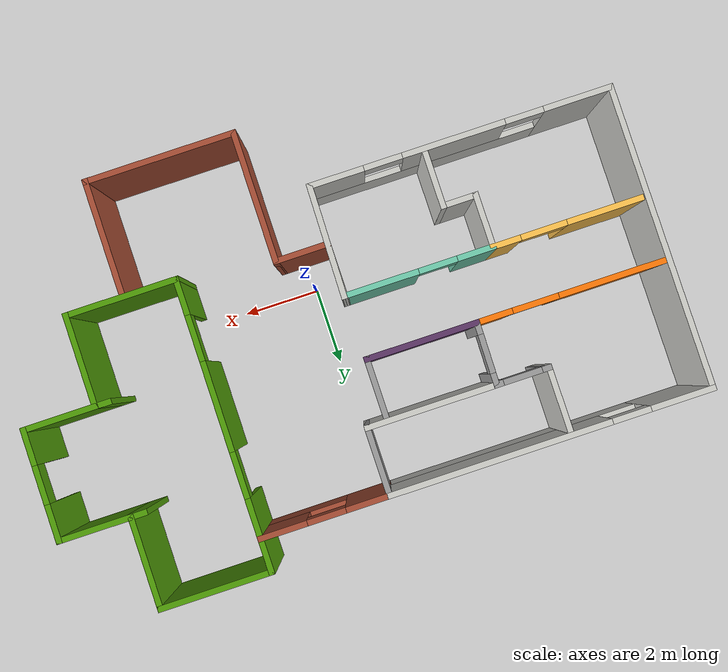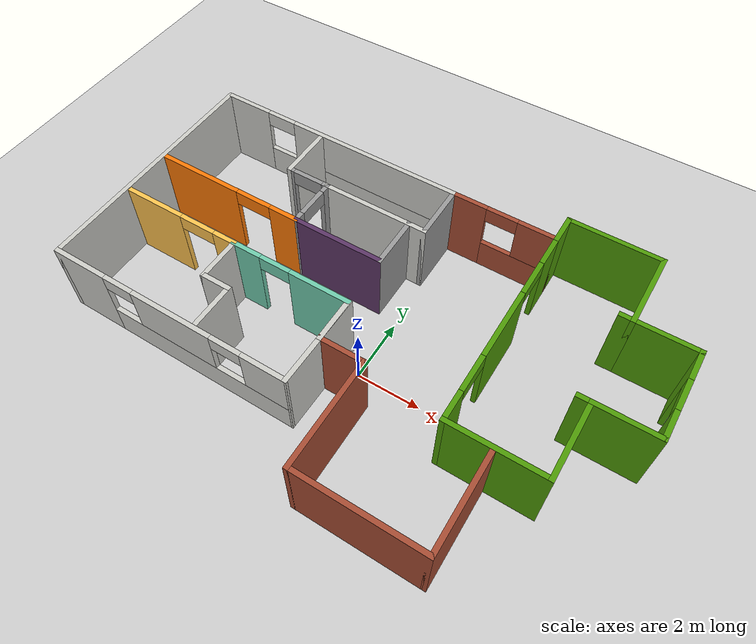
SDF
<sdf version='1.4'>
  <world name='default'>
    <!-- A global light source -->
    <include>
      <uri>model://sun</uri>
    </include>

    <!-- A ground plane -->
    <include>
      <uri>model://ground_plane</uri>
    </include>

    <physics type="ode">
      <real_time_update_rate>1000.0</real_time_update_rate>
      <max_step_size>0.001</max_step_size>
      <real_time_factor>1</real_time_factor>
      <ode>
        <solver>
          <type>quick</type>
          <iters>150</iters>
          <precon_iters>0</precon_iters>
          <sor>1.400000</sor>
          <use_dynamic_moi_rescaling>1</use_dynamic_moi_rescaling>
        </solver>
        <constraints>
          <cfm>0.00001</cfm>
          <erp>0.2</erp>
          <contact_max_correcting_vel>2000.000000</contact_max_correcting_vel>
          <contact_surface_layer>0.01000</contact_surface_layer>
        </constraints>
      </ode>
    </physics>

    <!-- A mobilebot symbol -->
    <include>
      <uri>model://mobilebot_stock</uri>
    </include>

    <scene>
      <ambient>0.4 0.4 0.4 1</ambient>
      <background>0.7 0.7 0.7 1</background>
      <shadows>true</shadows>
    </scene>

    <gui fullscreen='0'>
      <camera name='user_camera'>
        <pose>0.0 0.0 17.0 0 1.5708 0</pose>
        <view_controller>orbit</view_controller>
      </camera>
    </gui>
  </world>
</sdf>

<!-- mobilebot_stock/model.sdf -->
<sdf version='1.6'>
  <model name='stock'>
    <pose frame=''>-0.339478 1.13956 0 0 -0 0</pose>
    <link name='Wall_0'>
      <collision name='Wall_0_Collision'>
        <geometry>
          <box>
            <size>8 0.15 2.5</size>
          </box>
        </geometry>
        <pose frame=''>0 0 1.25 0 -0 0</pose>
      </collision>
      <visual name='Wall_0_Visual'>
        <pose frame=''>0 0 1.25 0 -0 0</pose>
        <geometry>
          <box>
            <size>8 0.15 2.5</size>
          </box>
        </geometry>
        <material>
          <script>
            <uri>file://media/materials/scripts/gazebo.material</uri>
            <name>Gazebo/CeilingTiled</name>
          </script>
          <ambient>1 1 1 1</ambient>
        </material>
        <meta>
          <layer>0</layer>
        </meta>
      </visual>
      <pose frame=''>-8.2 0.5 0 0 -0 -1.5708</pose>
    </link>
    <link name='Wall_1'>
      <pose frame=''>-4.275 -3.425 0 0 -0 0</pose>
      <visual name='Wall_1_Visual_0'>
        <pose frame=''>-3.08616 0 1.25 0 -0 0</pose>
        <geometry>
          <box>
            <size>1.82768 0.15 2.5</size>
          </box>
        </geometry>
        <material>
          <script>
            <uri>file://media/materials/scripts/gazebo.material</uri>
            <name>Gazebo/CeilingTiled</name>
          </script>
          <ambient>1 1 1 1</ambient>
        </material>
        <meta>
          <layer>0</layer>
        </meta>
      </visual>
      <collision name='Wall_1_Collision_0'>
        <geometry>
          <box>
            <size>1.82768 0.15 2.5</size>
          </box>
        </geometry>
        <pose frame=''>-3.08616 0 1.25 0 -0 0</pose>
      </collision>
      <visual name='Wall_1_Visual_1'>
        <pose frame=''>0.913839 0 0.5 0 -0 0</pose>
        <geometry>
          <box>
            <size>6.17232 0.15 1</size>
          </box>
        </geometry>
        <material>
          <script>
            <uri>file://media/materials/scripts/gazebo.material</uri>
            <name>Gazebo/CeilingTiled</name>
          </script>
          <ambient>1 1 1 1</ambient>
        </material>
        <meta>
          <layer>0</layer>
        </meta>
      </visual>
      <collision name='Wall_1_Collision_1'>
        <geometry>
          <box>
            <size>6.17232 0.15 1</size>
          </box>
        </geometry>
        <pose frame=''>0.913839 0 0.5 0 -0 0</pose>
      </collision>
      <visual name='Wall_1_Visual_2'>
        <pose frame=''>0.170983 0 1.75 0 -0 0</pose>
        <geometry>
          <box>
            <size>2.68661 0.15 1.5</size>
          </box>
        </geometry>
        <material>
          <script>
            <uri>file://media/materials/scripts/gazebo.material</uri>
            <name>Gazebo/CeilingTiled</name>
          </script>
          <ambient>1 1 1 1</ambient>
        </material>
        <meta>
          <layer>0</layer>
        </meta>
      </visual>
      <collision name='Wall_1_Collision_2'>
        <geometry>
          <box>
            <size>2.68661 0.15 1.5</size>
          </box>
        </geometry>
        <pose frame=''>0.170983 0 1.75 0 -0 0</pose>
      </collision>
      <visual name='Wall_1_Visual_3'>
        <pose frame=''>3.25714 0 1.75 0 -0 0</pose>
        <geometry>
          <box>
            <size>1.48571 0.15 1.5</size>
          </box>
        </geometry>
        <material>
          <script>
            <uri>file://media/materials/scripts/gazebo.material</uri>
            <name>Gazebo/CeilingTiled</name>
          </script>
          <ambient>1 1 1 1</ambient>
        </material>
        <meta>
          <layer>0</layer>
        </meta>
      </visual>
      <collision name='Wall_1_Collision_3'>
        <geometry>
          <box>
            <size>1.48571 0.15 1.5</size>
          </box>
        </geometry>
        <pose frame=''>3.25714 0 1.75 0 -0 0</pose>
      </collision>
      <visual name='Wall_1_Visual_4'>
        <pose frame=''>-1.67232 0 2.25 0 -0 0</pose>
        <geometry>
          <box>
            <size>1 0.15 0.5</size>
          </box>
        </geometry>
        <material>
          <script>
            <uri>file://media/materials/scripts/gazebo.material</uri>
            <name>Gazebo/CeilingTiled</name>
          </script>
          <ambient>1 1 1 1</ambient>
        </material>
        <meta>
          <layer>0</layer>
        </meta>
      </visual>
      <collision name='Wall_1_Collision_4'>
        <geometry>
          <box>
            <size>1 0.15 0.5</size>
          </box>
        </geometry>
        <pose frame=''>-1.67232 0 2.25 0 -0 0</pose>
      </collision>
      <visual name='Wall_1_Visual_5'>
        <pose frame=''>2.01429 0 2.25 0 -0 0</pose>
        <geometry>
          <box>
            <size>1 0.15 0.5</size>
          </box>
        </geometry>
        <material>
          <script>
            <uri>file://media/materials/scripts/gazebo.material</uri>
            <name>Gazebo/CeilingTiled</name>
          </script>
          <ambient>1 1 1 1</ambient>
        </material>
        <meta>
          <layer>0</layer>
        </meta>
      </visual>
      <collision name='Wall_1_Collision_5'>
        <geometry>
          <box>
            <size>1 0.15 0.5</size>
          </box>
        </geometry>
        <pose frame=''>2.01429 0 2.25 0 -0 0</pose>
      </collision>
    </link>
    <link name='Wall_11'>
      <pose frame=''>-4.025 4.425 0 0 -0 0</pose>
      <visual name='Wall_11_Visual_0'>
        <pose frame=''>-3.41033 0 1.25 0 -0 0</pose>
        <geometry>
          <box>
            <size>1.67933 0.15 2.5</size>
          </box>
        </geometry>
        <material>
          <script>
            <uri>file://media/materials/scripts/gazebo.material</uri>
            <name>Gazebo/CeilingTiled</name>
          </script>
          <ambient>1 1 1 1</ambient>
        </material>
        <meta>
          <layer>0</layer>
        </meta>
      </visual>
      <collision name='Wall_11_Collision_0'>
        <geometry>
          <box>
            <size>1.67933 0.15 2.5</size>
          </box>
        </geometry>
        <pose frame=''>-3.41033 0 1.25 0 -0 0</pose>
      </collision>
      <visual name='Wall_11_Visual_1'>
        <pose frame=''>0.839666 0 0.5 0 -0 0</pose>
        <geometry>
          <box>
            <size>6.82067 0.15 1</size>
          </box>
        </geometry>
        <material>
          <script>
            <uri>file://media/materials/scripts/gazebo.material</uri>
            <name>Gazebo/CeilingTiled</name>
          </script>
          <ambient>1 1 1 1</ambient>
        </material>
        <meta>
          <layer>0</layer>
        </meta>
      </visual>
      <collision name='Wall_11_Collision_1'>
        <geometry>
          <box>
            <size>6.82067 0.15 1</size>
          </box>
        </geometry>
        <pose frame=''>0.839666 0 0.5 0 -0 0</pose>
      </collision>
      <visual name='Wall_11_Visual_2'>
        <pose frame=''>1.33967 0 1.75 0 -0 0</pose>
        <geometry>
          <box>
            <size>5.82067 0.15 1.5</size>
          </box>
        </geometry>
        <material>
          <script>
            <uri>file://media/materials/scripts/gazebo.material</uri>
            <name>Gazebo/CeilingTiled</name>
          </script>
          <ambient>1 1 1 1</ambient>
        </material>
        <meta>
          <layer>0</layer>
        </meta>
      </visual>
      <collision name='Wall_11_Collision_2'>
        <geometry>
          <box>
            <size>5.82067 0.15 1.5</size>
          </box>
        </geometry>
        <pose frame=''>1.33967 0 1.75 0 -0 0</pose>
      </collision>
      <visual name='Wall_11_Visual_3'>
        <pose frame=''>-2.07067 0 2.25 0 -0 0</pose>
        <geometry>
          <box>
            <size>1 0.15 0.5</size>
          </box>
        </geometry>
        <material>
          <script>
            <uri>file://media/materials/scripts/gazebo.material</uri>
            <name>Gazebo/CeilingTiled</name>
          </script>
          <ambient>1 1 1 1</ambient>
        </material>
        <meta>
          <layer>0</layer>
        </meta>
      </visual>
      <collision name='Wall_11_Collision_3'>
        <geometry>
          <box>
            <size>1 0.15 0.5</size>
          </box>
        </geometry>
        <pose frame=''>-2.07067 0 2.25 0 -0 0</pose>
      </collision>
    </link>
    <link name='Wall_13'>
      <collision name='Wall_13_Collision'>
        <geometry>
          <box>
            <size>3 0.15 2.5</size>
          </box>
        </geometry>
        <pose frame=''>0 0 1.25 0 -0 0</pose>
      </collision>
      <visual name='Wall_13_Visual'>
        <pose frame=''>0 0 1.25 0 -0 0</pose>
        <geometry>
          <box>
            <size>3 0.15 2.5</size>
          </box>
        </geometry>
        <material>
          <script>
            <uri>file://media/materials/scripts/gazebo.material</uri>
            <name>Gazebo/Grey</name>
          </script>
          <ambient>0.360784 0.207843 0.4 1</ambient>
        </material>
        <meta>
          <layer>0</layer>
        </meta>
      </visual>
      <pose frame=''>-1.775 1.075 0 0 -0 3.14159</pose>
    </link>
    <link name='Wall_14'>
      <pose frame=''>-3.18921 1.875 0 0 -0 1.55732</pose>
      <visual name='Wall_14_Visual_0'>
        <pose frame=''>-0.686806 0 1.25 0 -0 0</pose>
        <geometry>
          <box>
            <size>0.376387 0.15 2.5</size>
          </box>
        </geometry>
        <material>
          <script>
            <uri>file://media/materials/scripts/gazebo.material</uri>
            <name>Gazebo/Grey</name>
          </script>
          <ambient>1 1 1 1</ambient>
        </material>
        <meta>
          <layer>0</layer>
        </meta>
      </visual>
      <collision name='Wall_14_Collision_0'>
        <geometry>
          <box>
            <size>0.376387 0.15 2.5</size>
          </box>
        </geometry>
        <pose frame=''>-0.686806 0 1.25 0 -0 0</pose>
      </collision>
      <visual name='Wall_14_Visual_1'>
        <pose frame=''>0.688194 0 1.25 0 -0 0</pose>
        <geometry>
          <box>
            <size>0.373613 0.15 2.5</size>
          </box>
        </geometry>
        <material>
          <script>
            <uri>file://media/materials/scripts/gazebo.material</uri>
            <name>Gazebo/Grey</name>
          </script>
          <ambient>1 1 1 1</ambient>
        </material>
        <meta>
          <layer>0</layer>
        </meta>
      </visual>
      <collision name='Wall_14_Collision_1'>
        <geometry>
          <box>
            <size>0.373613 0.15 2.5</size>
          </box>
        </geometry>
        <pose frame=''>0.688194 0 1.25 0 -0 0</pose>
      </collision>
      <visual name='Wall_14_Visual_2'>
        <pose frame=''>0.001387 0 2.25 0 -0 0</pose>
        <geometry>
          <box>
            <size>1 0.15 0.5</size>
          </box>
        </geometry>
        <material>
          <script>
            <uri>file://media/materials/scripts/gazebo.material</uri>
            <name>Gazebo/Grey</name>
          </script>
          <ambient>1 1 1 1</ambient>
        </material>
        <meta>
          <layer>0</layer>
        </meta>
      </visual>
      <collision name='Wall_14_Collision_2'>
        <geometry>
          <box>
            <size>1 0.15 0.5</size>
          </box>
        </geometry>
        <pose frame=''>0.001387 0 2.25 0 -0 0</pose>
      </collision>
    </link>
    <link name='Wall_16'>
      <collision name='Wall_16_Collision'>
        <geometry>
          <box>
            <size>3.5 0.15 2.5</size>
          </box>
        </geometry>
        <pose frame=''>0 0 1.25 0 -0 0</pose>
      </collision>
      <visual name='Wall_16_Visual'>
        <pose frame=''>0 0 1.25 0 -0 0</pose>
        <geometry>
          <box>
            <size>3.5 0.15 2.5</size>
          </box>
        </geometry>
        <material>
          <script>
            <uri>file://media/materials/scripts/gazebo.material</uri>
            <name>Gazebo/CeilingTiled</name>
          </script>
          <ambient>1 1 1 1</ambient>
        </material>
        <meta>
          <layer>0</layer>
        </meta>
      </visual>
      <pose frame=''>-1.50343 2.675 0 0 -0 0</pose>
    </link>
    <link name='Wall_18'>
      <pose frame=''>-3.86062 2.675 0 0 -0 3.14159</pose>
      <visual name='Wall_18_Visual_0'>
        <pose frame=''>-0.625189 0 1.25 0 -0 0</pose>
        <geometry>
          <box>
            <size>0.249622 0.15 2.5</size>
          </box>
        </geometry>
        <material>
          <script>
            <uri>file://media/materials/scripts/gazebo.material</uri>
            <name>Gazebo/Grey</name>
          </script>
          <ambient>0.333333 0.341176 0.32549 1</ambient>
        </material>
        <meta>
          <layer>0</layer>
        </meta>
      </visual>
      <collision name='Wall_18_Collision_0'>
        <geometry>
          <box>
            <size>0.249622 0.15 2.5</size>
          </box>
        </geometry>
        <pose frame=''>-0.625189 0 1.25 0 -0 0</pose>
      </collision>
      <visual name='Wall_18_Visual_1'>
        <pose frame=''>0.624811 0 1.25 0 -0 0</pose>
        <geometry>
          <box>
            <size>0.250378 0.15 2.5</size>
          </box>
        </geometry>
        <material>
          <script>
            <uri>file://media/materials/scripts/gazebo.material</uri>
            <name>Gazebo/Grey</name>
          </script>
          <ambient>0.333333 0.341176 0.32549 1</ambient>
        </material>
        <meta>
          <layer>0</layer>
        </meta>
      </visual>
      <collision name='Wall_18_Collision_1'>
        <geometry>
          <box>
            <size>0.250378 0.15 2.5</size>
          </box>
        </geometry>
        <pose frame=''>0.624811 0 1.25 0 -0 0</pose>
      </collision>
      <visual name='Wall_18_Visual_2'>
        <pose frame=''>-0.000378 0 2.25 0 -0 0</pose>
        <geometry>
          <box>
            <size>1 0.15 0.5</size>
          </box>
        </geometry>
        <material>
          <script>
            <uri>file://media/materials/scripts/gazebo.material</uri>
            <name>Gazebo/Grey</name>
          </script>
          <ambient>0.333333 0.341176 0.32549 1</ambient>
        </material>
        <meta>
          <layer>0</layer>
        </meta>
      </visual>
      <collision name='Wall_18_Collision_2'>
        <geometry>
          <box>
            <size>1 0.15 0.5</size>
          </box>
        </geometry>
        <pose frame=''>-0.000378 0 2.25 0 -0 0</pose>
      </collision>
    </link>
    <link name='Wall_2'>
      <collision name='Wall_2_Collision'>
        <geometry>
          <box>
            <size>3 0.15 2.5</size>
          </box>
        </geometry>
        <pose frame=''>0 0 1.25 0 -0 0</pose>
      </collision>
      <visual name='Wall_2_Visual'>
        <pose frame=''>0 0 1.25 0 -0 0</pose>
        <geometry>
          <box>
            <size>3 0.15 2.5</size>
          </box>
        </geometry>
        <material>
          <script>
            <uri>file://media/materials/scripts/gazebo.material</uri>
            <name>Gazebo/CeilingTiled</name>
          </script>
          <ambient>1 1 1 1</ambient>
        </material>
        <meta>
          <layer>0</layer>
        </meta>
      </visual>
      <pose frame=''>-0.326869 -2 0 0 -0 1.55457</pose>
    </link>
    <link name='Wall_23'>
      <pose frame=''>-5.625 1.075 0 0 -0 3.14159</pose>
      <visual name='Wall_23_Visual_0'>
        <pose frame=''>-1.99871 0 1.25 0 -0 0</pose>
        <geometry>
          <box>
            <size>1.00259 0.15 2.5</size>
          </box>
        </geometry>
        <material>
          <script>
            <uri>file://media/materials/scripts/gazebo.material</uri>
            <name>Gazebo/Grey</name>
          </script>
          <ambient>0.996078 0.47451 0.0196078 1</ambient>
        </material>
        <meta>
          <layer>0</layer>
        </meta>
      </visual>
      <collision name='Wall_23_Collision_0'>
        <geometry>
          <box>
            <size>1.00259 0.15 2.5</size>
          </box>
        </geometry>
        <pose frame=''>-1.99871 0 1.25 0 -0 0</pose>
      </collision>
      <visual name='Wall_23_Visual_1'>
        <pose frame=''>1.10129 0 1.25 0 -0 0</pose>
        <geometry>
          <box>
            <size>2.79741 0.15 2.5</size>
          </box>
        </geometry>
        <material>
          <script>
            <uri>file://media/materials/scripts/gazebo.material</uri>
            <name>Gazebo/Grey</name>
          </script>
          <ambient>0.996078 0.47451 0.0196078 1</ambient>
        </material>
        <meta>
          <layer>0</layer>
        </meta>
      </visual>
      <collision name='Wall_23_Collision_1'>
        <geometry>
          <box>
            <size>2.79741 0.15 2.5</size>
          </box>
        </geometry>
        <pose frame=''>1.10129 0 1.25 0 -0 0</pose>
      </collision>
      <visual name='Wall_23_Visual_2'>
        <pose frame=''>-0.897414 0 2.25 0 -0 0</pose>
        <geometry>
          <box>
            <size>1.2 0.15 0.5</size>
          </box>
        </geometry>
        <material>
          <script>
            <uri>file://media/materials/scripts/gazebo.material</uri>
            <name>Gazebo/Grey</name>
          </script>
          <ambient>0.996078 0.47451 0.0196078 1</ambient>
        </material>
        <meta>
          <layer>0</layer>
        </meta>
      </visual>
      <collision name='Wall_23_Collision_2'>
        <geometry>
          <box>
            <size>1.2 0.15 0.5</size>
          </box>
        </geometry>
        <pose frame=''>-0.897414 0 2.25 0 -0 0</pose>
      </collision>
    </link>
    <link name='Wall_25'>
      <pose frame=''>1.825 4.425 0 0 -0 0</pose>
      <visual name='Wall_25_Visual_0'>
        <pose frame=''>-1.13874 0 1.25 0 -0 0</pose>
        <geometry>
          <box>
            <size>1.22252 0.15 2.5</size>
          </box>
        </geometry>
        <material>
          <script>
            <uri>file://media/materials/scripts/gazebo.material</uri>
            <name>Gazebo/Bricks</name>
          </script>
          <ambient>1 1 1 1</ambient>
        </material>
        <meta>
          <layer>0</layer>
        </meta>
      </visual>
      <collision name='Wall_25_Collision_0'>
        <geometry>
          <box>
            <size>1.22252 0.15 2.5</size>
          </box>
        </geometry>
        <pose frame=''>-1.13874 0 1.25 0 -0 0</pose>
      </collision>
      <visual name='Wall_25_Visual_1'>
        <pose frame=''>0.611261 0 0.5 0 -0 0</pose>
        <geometry>
          <box>
            <size>2.27748 0.15 1</size>
          </box>
        </geometry>
        <material>
          <script>
            <uri>file://media/materials/scripts/gazebo.material</uri>
            <name>Gazebo/Bricks</name>
          </script>
          <ambient>1 1 1 1</ambient>
        </material>
        <meta>
          <layer>0</layer>
        </meta>
      </visual>
      <collision name='Wall_25_Collision_1'>
        <geometry>
          <box>
            <size>2.27748 0.15 1</size>
          </box>
        </geometry>
        <pose frame=''>0.611261 0 0.5 0 -0 0</pose>
      </collision>
      <visual name='Wall_25_Visual_2'>
        <pose frame=''>1.11126 0 1.75 0 -0 0</pose>
        <geometry>
          <box>
            <size>1.27748 0.15 1.5</size>
          </box>
        </geometry>
        <material>
          <script>
            <uri>file://media/materials/scripts/gazebo.material</uri>
            <name>Gazebo/Bricks</name>
          </script>
          <ambient>1 1 1 1</ambient>
        </material>
        <meta>
          <layer>0</layer>
        </meta>
      </visual>
      <collision name='Wall_25_Collision_2'>
        <geometry>
          <box>
            <size>1.27748 0.15 1.5</size>
          </box>
        </geometry>
        <pose frame=''>1.11126 0 1.75 0 -0 0</pose>
      </collision>
      <visual name='Wall_25_Visual_3'>
        <pose frame=''>-0.027478 0 2.25 0 -0 0</pose>
        <geometry>
          <box>
            <size>1 0.15 0.5</size>
          </box>
        </geometry>
        <material>
          <script>
            <uri>file://media/materials/scripts/gazebo.material</uri>
            <name>Gazebo/Bricks</name>
          </script>
          <ambient>1 1 1 1</ambient>
        </material>
        <meta>
          <layer>0</layer>
        </meta>
      </visual>
      <collision name='Wall_25_Collision_3'>
        <geometry>
          <box>
            <size>1 0.15 0.5</size>
          </box>
        </geometry>
        <pose frame=''>-0.027478 0 2.25 0 -0 0</pose>
      </collision>
    </link>
    <link name='Wall_26'>
      <collision name='Wall_26_Collision'>
        <geometry>
          <box>
            <size>1 0.15 2.5</size>
          </box>
        </geometry>
        <pose frame=''>0 0 1.25 0 -0 0</pose>
      </collision>
      <visual name='Wall_26_Visual'>
        <pose frame=''>0 0 1.25 0 -0 0</pose>
        <geometry>
          <box>
            <size>1 0.15 2.5</size>
          </box>
        </geometry>
        <material>
          <script>
            <uri>file://media/materials/scripts/gazebo.material</uri>
            <name>Gazebo/Grey</name>
          </script>
          <ambient>0.305882 0.603922 0.0235294 1</ambient>
        </material>
        <meta>
          <layer>0</layer>
        </meta>
      </visual>
      <pose frame=''>3.5 4.85 0 0 -0 1.5708</pose>
    </link>
    <link name='Wall_27'>
      <collision name='Wall_27_Collision'>
        <geometry>
          <box>
            <size>3 0.15 2.5</size>
          </box>
        </geometry>
        <pose frame=''>0 0 1.25 0 -0 0</pose>
      </collision>
      <visual name='Wall_27_Visual'>
        <pose frame=''>0 0 1.25 0 -0 0</pose>
        <geometry>
          <box>
            <size>3 0.15 2.5</size>
          </box>
        </geometry>
        <material>
          <script>
            <uri>file://media/materials/scripts/gazebo.material</uri>
            <name>Gazebo/Grey</name>
          </script>
          <ambient>0.305882 0.603922 0.0235294 1</ambient>
        </material>
        <meta>
          <layer>0</layer>
        </meta>
      </visual>
      <pose frame=''>4.925 5.275 0 0 -0 0</pose>
    </link>
    <link name='Wall_28'>
      <collision name='Wall_28_Collision'>
        <geometry>
          <box>
            <size>2.5 0.15 2.5</size>
          </box>
        </geometry>
        <pose frame=''>0 0 1.25 0 -0 0</pose>
      </collision>
      <visual name='Wall_28_Visual'>
        <pose frame=''>0 0 1.25 0 -0 0</pose>
        <geometry>
          <box>
            <size>2.5 0.15 2.5</size>
          </box>
        </geometry>
        <material>
          <script>
            <uri>file://media/materials/scripts/gazebo.material</uri>
            <name>Gazebo/Grey</name>
          </script>
          <ambient>0.305882 0.603922 0.0235294 1</ambient>
        </material>
        <meta>
          <layer>0</layer>
        </meta>
      </visual>
      <pose frame=''>6.35 4.1 0 0 -0 -1.5708</pose>
    </link>
    <link name='Wall_29'>
      <collision name='Wall_29_Collision'>
        <geometry>
          <box>
            <size>2 0.15 2.5</size>
          </box>
        </geometry>
        <pose frame=''>0 0 1.25 0 -0 0</pose>
      </collision>
      <visual name='Wall_29_Visual'>
        <pose frame=''>0 0 1.25 0 -0 0</pose>
        <geometry>
          <box>
            <size>2 0.15 2.5</size>
          </box>
        </geometry>
        <material>
          <script>
            <uri>file://media/materials/scripts/gazebo.material</uri>
            <name>Gazebo/Grey</name>
          </script>
          <ambient>0.305882 0.603922 0.0235294 1</ambient>
        </material>
        <meta>
          <layer>0</layer>
        </meta>
      </visual>
      <pose frame=''>7.275 2.925 0 0 -0 0</pose>
    </link>
    <link name='Wall_3'>
      <pose frame=''>-2.25187 -0.575 0 0 -0 3.14159</pose>
      <visual name='Wall_3_Visual_0'>
        <pose frame=''>-1.00337 0 1.25 0 -0 0</pose>
        <geometry>
          <box>
            <size>1.99326 0.15 2.5</size>
          </box>
        </geometry>
        <material>
          <script>
            <uri>file://media/materials/scripts/gazebo.material</uri>
            <name>Gazebo/Grey</name>
          </script>
          <ambient>0.435294 0.796078 0.67451 1</ambient>
        </material>
        <meta>
          <layer>0</layer>
        </meta>
      </visual>
      <collision name='Wall_3_Collision_0'>
        <geometry>
          <box>
            <size>1.99326 0.15 2.5</size>
          </box>
        </geometry>
        <pose frame=''>-1.00337 0 1.25 0 -0 0</pose>
      </collision>
      <visual name='Wall_3_Visual_1'>
        <pose frame=''>1.49663 0 1.25 0 -0 0</pose>
        <geometry>
          <box>
            <size>1.00674 0.15 2.5</size>
          </box>
        </geometry>
        <material>
          <script>
            <uri>file://media/materials/scripts/gazebo.material</uri>
            <name>Gazebo/Grey</name>
          </script>
          <ambient>0.435294 0.796078 0.67451 1</ambient>
        </material>
        <meta>
          <layer>0</layer>
        </meta>
      </visual>
      <collision name='Wall_3_Collision_1'>
        <geometry>
          <box>
            <size>1.00674 0.15 2.5</size>
          </box>
        </geometry>
        <pose frame=''>1.49663 0 1.25 0 -0 0</pose>
      </collision>
      <visual name='Wall_3_Visual_2'>
        <pose frame=''>0.493258 0 2.25 0 -0 0</pose>
        <geometry>
          <box>
            <size>1 0.15 0.5</size>
          </box>
        </geometry>
        <material>
          <script>
            <uri>file://media/materials/scripts/gazebo.material</uri>
            <name>Gazebo/Grey</name>
          </script>
          <ambient>0.435294 0.796078 0.67451 1</ambient>
        </material>
        <meta>
          <layer>0</layer>
        </meta>
      </visual>
      <collision name='Wall_3_Collision_2'>
        <geometry>
          <box>
            <size>1 0.15 0.5</size>
          </box>
        </geometry>
        <pose frame=''>0.493258 0 2.25 0 -0 0</pose>
      </collision>
    </link>
    <link name='Wall_30'>
      <pose frame=''>8.2 1.5 0 0 -0 -1.5708</pose>
      <visual name='Wall_30_Visual_0'>
        <pose frame=''>-0.994978 0 1.25 0 -0 0</pose>
        <geometry>
          <box>
            <size>1.01005 0.15 2.5</size>
          </box>
        </geometry>
        <material>
          <script>
            <uri>file://media/materials/scripts/gazebo.material</uri>
            <name>Gazebo/Grey</name>
          </script>
          <ambient>0.305882 0.603922 0.0235294 1</ambient>
        </material>
        <meta>
          <layer>0</layer>
        </meta>
      </visual>
      <collision name='Wall_30_Collision_0'>
        <geometry>
          <box>
            <size>1.01005 0.15 2.5</size>
          </box>
        </geometry>
        <pose frame=''>-0.994978 0 1.25 0 -0 0</pose>
      </collision>
      <visual name='Wall_30_Visual_1'>
        <pose frame=''>1.00502 0 1.25 0 -0 0</pose>
        <geometry>
          <box>
            <size>0.989955 0.15 2.5</size>
          </box>
        </geometry>
        <material>
          <script>
            <uri>file://media/materials/scripts/gazebo.material</uri>
            <name>Gazebo/Grey</name>
          </script>
          <ambient>0.305882 0.603922 0.0235294 1</ambient>
        </material>
        <meta>
          <layer>0</layer>
        </meta>
      </visual>
      <collision name='Wall_30_Collision_1'>
        <geometry>
          <box>
            <size>0.989955 0.15 2.5</size>
          </box>
        </geometry>
        <pose frame=''>1.00502 0 1.25 0 -0 0</pose>
      </collision>
      <visual name='Wall_30_Visual_2'>
        <pose frame=''>0.010045 0 2.25 0 -0 0</pose>
        <geometry>
          <box>
            <size>1 0.15 0.5</size>
          </box>
        </geometry>
        <material>
          <script>
            <uri>file://media/materials/scripts/gazebo.material</uri>
            <name>Gazebo/Grey</name>
          </script>
          <ambient>0.305882 0.603922 0.0235294 1</ambient>
        </material>
        <meta>
          <layer>0</layer>
        </meta>
      </visual>
      <collision name='Wall_30_Collision_2'>
        <geometry>
          <box>
            <size>1 0.15 0.5</size>
          </box>
        </geometry>
        <pose frame=''>0.010045 0 2.25 0 -0 0</pose>
      </collision>
    </link>
    <link name='Wall_31'>
      <collision name='Wall_31_Collision'>
        <geometry>
          <box>
            <size>2 0.15 2.5</size>
          </box>
        </geometry>
        <pose frame=''>0 0 1.25 0 -0 0</pose>
      </collision>
      <visual name='Wall_31_Visual'>
        <pose frame=''>0 0 1.25 0 -0 0</pose>
        <geometry>
          <box>
            <size>2 0.15 2.5</size>
          </box>
        </geometry>
        <material>
          <script>
            <uri>file://media/materials/scripts/gazebo.material</uri>
            <name>Gazebo/Grey</name>
          </script>
          <ambient>0.305882 0.603922 0.0235294 1</ambient>
        </material>
        <meta>
          <layer>0</layer>
        </meta>
      </visual>
      <pose frame=''>7.275 0.075 0 0 -0 3.14159</pose>
    </link>
    <link name='Wall_32'>
      <collision name='Wall_32_Collision'>
        <geometry>
          <box>
            <size>2.5 0.15 2.5</size>
          </box>
        </geometry>
        <pose frame=''>0 0 1.25 0 -0 0</pose>
      </collision>
      <visual name='Wall_32_Visual'>
        <pose frame=''>0 0 1.25 0 -0 0</pose>
        <geometry>
          <box>
            <size>2.5 0.15 2.5</size>
          </box>
        </geometry>
        <material>
          <script>
            <uri>file://media/materials/scripts/gazebo.material</uri>
            <name>Gazebo/Grey</name>
          </script>
          <ambient>0.305882 0.603922 0.0235294 1</ambient>
        </material>
        <meta>
          <layer>0</layer>
        </meta>
      </visual>
      <pose frame=''>6.35 -1.1 0 0 -0 -1.5708</pose>
    </link>
    <link name='Wall_33'>
      <collision name='Wall_33_Collision'>
        <geometry>
          <box>
            <size>3 0.15 2.5</size>
          </box>
        </geometry>
        <pose frame=''>0 0 1.25 0 -0 0</pose>
      </collision>
      <visual name='Wall_33_Visual'>
        <pose frame=''>0 0 1.25 0 -0 0</pose>
        <geometry>
          <box>
            <size>3 0.15 2.5</size>
          </box>
        </geometry>
        <material>
          <script>
            <uri>file://media/materials/scripts/gazebo.material</uri>
            <name>Gazebo/Grey</name>
          </script>
          <ambient>0.305882 0.603922 0.0235294 1</ambient>
        </material>
        <meta>
          <layer>0</layer>
        </meta>
      </visual>
      <pose frame=''>4.925 -2.275 0 0 -0 3.14159</pose>
    </link>
    <link name='Wall_34'>
      <pose frame=''>3.5 1.025 0 0 -0 1.5708</pose>
      <visual name='Wall_34_Visual_0'>
        <pose frame=''>-2.87295 0 1.25 0 -0 0</pose>
        <geometry>
          <box>
            <size>1.00411 0.15 2.5</size>
          </box>
        </geometry>
        <material>
          <script>
            <uri>file://media/materials/scripts/gazebo.material</uri>
            <name>Gazebo/Grey</name>
          </script>
          <ambient>0.305882 0.603922 0.0235294 1</ambient>
        </material>
        <meta>
          <layer>0</layer>
        </meta>
      </visual>
      <collision name='Wall_34_Collision_0'>
        <geometry>
          <box>
            <size>1.00411 0.15 2.5</size>
          </box>
        </geometry>
        <pose frame=''>-2.87295 0 1.25 0 -0 0</pose>
      </collision>
      <visual name='Wall_34_Visual_1'>
        <pose frame=''>-0.000333 0 1.25 0 -0 0</pose>
        <geometry>
          <box>
            <size>2.34112 0.15 2.5</size>
          </box>
        </geometry>
        <material>
          <script>
            <uri>file://media/materials/scripts/gazebo.material</uri>
            <name>Gazebo/Grey</name>
          </script>
          <ambient>0.305882 0.603922 0.0235294 1</ambient>
        </material>
        <meta>
          <layer>0</layer>
        </meta>
      </visual>
      <collision name='Wall_34_Collision_1'>
        <geometry>
          <box>
            <size>2.34112 0.15 2.5</size>
          </box>
        </geometry>
        <pose frame=''>-0.000333 0 1.25 0 -0 0</pose>
      </collision>
      <visual name='Wall_34_Visual_2'>
        <pose frame=''>2.87261 0 1.25 0 -0 0</pose>
        <geometry>
          <box>
            <size>1.00477 0.15 2.5</size>
          </box>
        </geometry>
        <material>
          <script>
            <uri>file://media/materials/scripts/gazebo.material</uri>
            <name>Gazebo/Grey</name>
          </script>
          <ambient>0.305882 0.603922 0.0235294 1</ambient>
        </material>
        <meta>
          <layer>0</layer>
        </meta>
      </visual>
      <collision name='Wall_34_Collision_2'>
        <geometry>
          <box>
            <size>1.00477 0.15 2.5</size>
          </box>
        </geometry>
        <pose frame=''>2.87261 0 1.25 0 -0 0</pose>
      </collision>
      <visual name='Wall_34_Visual_3'>
        <pose frame=''>-1.77089 0 2.25 0 -0 0</pose>
        <geometry>
          <box>
            <size>1.2 0.15 0.5</size>
          </box>
        </geometry>
        <material>
          <script>
            <uri>file://media/materials/scripts/gazebo.material</uri>
            <name>Gazebo/Grey</name>
          </script>
          <ambient>0.305882 0.603922 0.0235294 1</ambient>
        </material>
        <meta>
          <layer>0</layer>
        </meta>
      </visual>
      <collision name='Wall_34_Collision_3'>
        <geometry>
          <box>
            <size>1.2 0.15 0.5</size>
          </box>
        </geometry>
        <pose frame=''>-1.77089 0 2.25 0 -0 0</pose>
      </collision>
      <visual name='Wall_34_Visual_4'>
        <pose frame=''>1.77023 0 2.25 0 -0 0</pose>
        <geometry>
          <box>
            <size>1.2 0.15 0.5</size>
          </box>
        </geometry>
        <material>
          <script>
            <uri>file://media/materials/scripts/gazebo.material</uri>
            <name>Gazebo/Grey</name>
          </script>
          <ambient>0.305882 0.603922 0.0235294 1</ambient>
        </material>
        <meta>
          <layer>0</layer>
        </meta>
      </visual>
      <collision name='Wall_34_Collision_4'>
        <geometry>
          <box>
            <size>1.2 0.15 0.5</size>
          </box>
        </geometry>
        <pose frame=''>1.77023 0 2.25 0 -0 0</pose>
      </collision>
    </link>
    <link name='Wall_36'>
      <collision name='Wall_36_Collision'>
        <geometry>
          <box>
            <size>1.5 0.15 2.5</size>
          </box>
        </geometry>
        <pose frame=''>0 0 1.25 0 -0 0</pose>
      </collision>
      <visual name='Wall_36_Visual'>
        <pose frame=''>0 0 1.25 0 -0 0</pose>
        <geometry>
          <box>
            <size>1.5 0.15 2.5</size>
          </box>
        </geometry>
        <material>
          <script>
            <uri>file://media/materials/scripts/gazebo.material</uri>
            <name>Gazebo/CeilingTiled</name>
          </script>
          <ambient>1 1 1 1</ambient>
        </material>
        <meta>
          <layer>0</layer>
        </meta>
      </visual>
      <pose frame=''>-0.326869 -1.25 0 0 -0 -1.5708</pose>
    </link>
    <link name='Wall_37'>
      <collision name='Wall_37_Collision'>
        <geometry>
          <box>
            <size>1.5 0.15 2.5</size>
          </box>
        </geometry>
        <pose frame=''>0 0 1.25 0 -0 0</pose>
      </collision>
      <visual name='Wall_37_Visual'>
        <pose frame=''>0 0 1.25 0 -0 0</pose>
        <geometry>
          <box>
            <size>1.5 0.15 2.5</size>
          </box>
        </geometry>
        <material>
          <script>
            <uri>file://media/materials/scripts/gazebo.material</uri>
            <name>Gazebo/Bricks</name>
          </script>
          <ambient>1 1 1 1</ambient>
        </material>
        <meta>
          <layer>0</layer>
        </meta>
      </visual>
      <pose frame=''>0.348131 -1.925 0 0 -0 0</pose>
    </link>
    <link name='Wall_38'>
      <collision name='Wall_38_Collision'>
        <geometry>
          <box>
            <size>3.5 0.15 2.5</size>
          </box>
        </geometry>
        <pose frame=''>0 0 1.25 0 -0 0</pose>
      </collision>
      <visual name='Wall_38_Visual'>
        <pose frame=''>0 0 1.25 0 -0 0</pose>
        <geometry>
          <box>
            <size>3.5 0.15 2.5</size>
          </box>
        </geometry>
        <material>
          <script>
            <uri>file://media/materials/scripts/gazebo.material</uri>
            <name>Gazebo/Bricks</name>
          </script>
          <ambient>1 1 1 1</ambient>
        </material>
        <meta>
          <layer>0</layer>
        </meta>
      </visual>
      <pose frame=''>1.02313 -3.6 0 0 -0 -1.5708</pose>
    </link>
    <link name='Wall_39'>
      <collision name='Wall_39_Collision'>
        <geometry>
          <box>
            <size>4 0.15 2.5</size>
          </box>
        </geometry>
        <pose frame=''>0 0 1.25 0 -0 0</pose>
      </collision>
      <visual name='Wall_39_Visual'>
        <pose frame=''>0 0 1.25 0 -0 0</pose>
        <geometry>
          <box>
            <size>4 0.15 2.5</size>
          </box>
        </geometry>
        <material>
          <script>
            <uri>file://media/materials/scripts/gazebo.material</uri>
            <name>Gazebo/Bricks</name>
          </script>
          <ambient>1 1 1 1</ambient>
        </material>
        <meta>
          <layer>0</layer>
        </meta>
      </visual>
      <pose frame=''>2.94813 -5.275 0 0 -0 0</pose>
    </link>
    <link name='Wall_40'>
      <collision name='Wall_40_Collision'>
        <geometry>
          <box>
            <size>3 0.15 2.5</size>
          </box>
        </geometry>
        <pose frame=''>0 0 1.25 0 -0 0</pose>
      </collision>
      <visual name='Wall_40_Visual'>
        <pose frame=''>0 0 1.25 0 -0 0</pose>
        <geometry>
          <box>
            <size>3 0.15 2.5</size>
          </box>
        </geometry>
        <material>
          <script>
            <uri>file://media/materials/scripts/gazebo.material</uri>
            <name>Gazebo/Bricks</name>
          </script>
          <ambient>1 1 1 1</ambient>
        </material>
        <meta>
          <layer>0</layer>
        </meta>
      </visual>
      <pose frame=''>4.87313 -3.85 0 0 -0 1.5708</pose>
    </link>
    <link name='Wall_42'>
      <collision name='Wall_42_Collision'>
        <geometry>
          <box>
            <size>1.75 0.15 2.5</size>
          </box>
        </geometry>
        <pose frame=''>0 0 1.25 0 -0 0</pose>
      </collision>
      <visual name='Wall_42_Visual'>
        <pose frame=''>0 0 1.25 0 -0 0</pose>
        <geometry>
          <box>
            <size>1.75 0.15 2.5</size>
          </box>
        </geometry>
        <material>
          <script>
            <uri>file://media/materials/scripts/gazebo.material</uri>
            <name>Gazebo/CeilingTiled</name>
          </script>
          <ambient>1 1 1 1</ambient>
        </material>
        <meta>
          <layer>0</layer>
        </meta>
      </visual>
      <pose frame=''>-4.53562 3.475 0 0 -0 1.5708</pose>
    </link>
    <link name='Wall_44'>
      <collision name='Wall_44_Collision'>
        <geometry>
          <box>
            <size>0.5 0.15 2.5</size>
          </box>
        </geometry>
        <pose frame=''>0 0 1.25 0 -0 0</pose>
      </collision>
      <visual name='Wall_44_Visual'>
        <pose frame=''>0 0 1.25 0 -0 0</pose>
        <geometry>
          <box>
            <size>0.5 0.15 2.5</size>
          </box>
        </geometry>
        <material>
          <script>
            <uri>file://media/materials/scripts/gazebo.material</uri>
            <name>Gazebo/Grey</name>
          </script>
          <ambient>0.305882 0.603922 0.0235294 1</ambient>
        </material>
        <meta>
          <layer>0</layer>
        </meta>
      </visual>
      <pose frame=''>6.175 2.925 0 0 -0 3.14159</pose>
    </link>
    <link name='Wall_46'>
      <collision name='Wall_46_Collision'>
        <geometry>
          <box>
            <size>0.5 0.15 2.5</size>
          </box>
        </geometry>
        <pose frame=''>0 0 1.25 0 -0 0</pose>
      </collision>
      <visual name='Wall_46_Visual'>
        <pose frame=''>0 0 1.25 0 -0 0</pose>
        <geometry>
          <box>
            <size>0.5 0.15 2.5</size>
          </box>
        </geometry>
        <material>
          <script>
            <uri>file://media/materials/scripts/gazebo.material</uri>
            <name>Gazebo/Grey</name>
          </script>
          <ambient>0.305882 0.603922 0.0235294 1</ambient>
        </material>
        <meta>
          <layer>0</layer>
        </meta>
      </visual>
      <pose frame=''>6.175 0.075 0 0 -0 3.14159</pose>
    </link>
    <link name='Wall_49'>
      <collision name='Wall_49_Collision'>
        <geometry>
          <box>
            <size>1.75 0.15 2.5</size>
          </box>
        </geometry>
        <pose frame=''>0 0 1.25 0 -0 0</pose>
      </collision>
      <visual name='Wall_49_Visual'>
        <pose frame=''>0 0 1.25 0 -0 0</pose>
        <geometry>
          <box>
            <size>1.75 0.15 2.5</size>
          </box>
        </geometry>
        <material>
          <script>
            <uri>file://media/materials/scripts/gazebo.material</uri>
            <name>Gazebo/Grey</name>
          </script>
          <ambient>1 1 1 1</ambient>
        </material>
        <meta>
          <layer>0</layer>
        </meta>
      </visual>
      <pose frame=''>0.171572 3.475 0 0 -0 1.5708</pose>
    </link>
    <link name='Wall_5'>
      <collision name='Wall_5_Collision'>
        <geometry>
          <box>
            <size>1.5 0.15 2.5</size>
          </box>
        </geometry>
        <pose frame=''>0 0 1.25 0 -0 0</pose>
      </collision>
      <visual name='Wall_5_Visual'>
        <pose frame=''>0 0 1.25 0 -0 0</pose>
        <geometry>
          <box>
            <size>1.5 0.15 2.5</size>
          </box>
        </geometry>
        <material>
          <script>
            <uri>file://media/materials/scripts/gazebo.material</uri>
            <name>Gazebo/CeilingTiled</name>
          </script>
          <ambient>1 1 1 1</ambient>
        </material>
        <meta>
          <layer>0</layer>
        </meta>
      </visual>
      <pose frame=''>-4.17687 -1.25 0 0 -0 -1.5708</pose>
    </link>
    <link name='Wall_51'>
      <collision name='Wall_51_Collision'>
        <geometry>
          <box>
            <size>1.75 0.15 2.5</size>
          </box>
        </geometry>
        <pose frame=''>0 0 1.25 0 -0 0</pose>
      </collision>
      <visual name='Wall_51_Visual'>
        <pose frame=''>0 0 1.25 0 -0 0</pose>
        <geometry>
          <box>
            <size>1.75 0.15 2.5</size>
          </box>
        </geometry>
        <material>
          <script>
            <uri>file://media/materials/scripts/gazebo.material</uri>
            <name>Gazebo/Grey</name>
          </script>
          <ambient>1 1 1 1</ambient>
        </material>
        <meta>
          <layer>0</layer>
        </meta>
      </visual>
      <pose frame=''>-0.349999 1.875 0 0 -0 1.5708</pose>
    </link>
    <link name='Wall_6'>
      <collision name='Wall_6_Collision'>
        <geometry>
          <box>
            <size>1 0.15 2.5</size>
          </box>
        </geometry>
        <pose frame=''>0 0 1.25 0 -0 0</pose>
      </collision>
      <visual name='Wall_6_Visual'>
        <pose frame=''>0 0 1.25 0 -0 0</pose>
        <geometry>
          <box>
            <size>1 0.15 2.5</size>
          </box>
        </geometry>
        <material>
          <script>
            <uri>file://media/materials/scripts/gazebo.material</uri>
            <name>Gazebo/CeilingTiled</name>
          </script>
          <ambient>1 1 1 1</ambient>
        </material>
        <meta>
          <layer>0</layer>
        </meta>
      </visual>
      <pose frame=''>-3.75187 -1.925 0 0 -0 0</pose>
    </link>
    <link name='Wall_7'>
      <collision name='Wall_7_Collision'>
        <geometry>
          <box>
            <size>1.5 0.15 2.5</size>
          </box>
        </geometry>
        <pose frame=''>0 0 1.25 0 -0 0</pose>
      </collision>
      <visual name='Wall_7_Visual'>
        <pose frame=''>0 0 1.25 0 -0 0</pose>
        <geometry>
          <box>
            <size>1.5 0.15 2.5</size>
          </box>
        </geometry>
        <material>
          <script>
            <uri>file://media/materials/scripts/gazebo.material</uri>
            <name>Gazebo/CeilingTiled</name>
          </script>
          <ambient>1 1 1 1</ambient>
        </material>
        <meta>
          <layer>0</layer>
        </meta>
      </visual>
      <pose frame=''>-3.32687 -2.6 0 0 -0 -1.5708</pose>
    </link>
    <link name='Wall_9'>
      <pose frame=''>-6.10187 -0.575 0 0 -0 3.14159</pose>
      <visual name='Wall_9_Visual_0'>
        <pose frame=''>-1.60043 0 1.25 0 -0 0</pose>
        <geometry>
          <box>
            <size>0.799136 0.15 2.5</size>
          </box>
        </geometry>
        <material>
          <script>
            <uri>file://media/materials/scripts/gazebo.material</uri>
            <name>Gazebo/Grey</name>
          </script>
          <ambient>1 0.764706 0.305882 1</ambient>
        </material>
        <meta>
          <layer>0</layer>
        </meta>
      </visual>
      <collision name='Wall_9_Collision_0'>
        <geometry>
          <box>
            <size>0.799136 0.15 2.5</size>
          </box>
        </geometry>
        <pose frame=''>-1.60043 0 1.25 0 -0 0</pose>
      </collision>
      <visual name='Wall_9_Visual_1'>
        <pose frame=''>0.999568 0 1.25 0 -0 0</pose>
        <geometry>
          <box>
            <size>2.00086 0.15 2.5</size>
          </box>
        </geometry>
        <material>
          <script>
            <uri>file://media/materials/scripts/gazebo.material</uri>
            <name>Gazebo/Grey</name>
          </script>
          <ambient>1 0.764706 0.305882 1</ambient>
        </material>
        <meta>
          <layer>0</layer>
        </meta>
      </visual>
      <collision name='Wall_9_Collision_1'>
        <geometry>
          <box>
            <size>2.00086 0.15 2.5</size>
          </box>
        </geometry>
        <pose frame=''>0.999568 0 1.25 0 -0 0</pose>
      </collision>
      <visual name='Wall_9_Visual_2'>
        <pose frame=''>-0.600864 0 2.25 0 -0 0</pose>
        <geometry>
          <box>
            <size>1.2 0.15 0.5</size>
          </box>
        </geometry>
        <material>
          <script>
            <uri>file://media/materials/scripts/gazebo.material</uri>
            <name>Gazebo/Grey</name>
          </script>
          <ambient>1 0.764706 0.305882 1</ambient>
        </material>
        <meta>
          <layer>0</layer>
        </meta>
      </visual>
      <collision name='Wall_9_Collision_2'>
        <geometry>
          <box>
            <size>1.2 0.15 0.5</size>
          </box>
        </geometry>
        <pose frame=''>-0.600864 0 2.25 0 -0 0</pose>
      </collision>
    </link>
    <static>1</static>
  </model>
</sdf>
